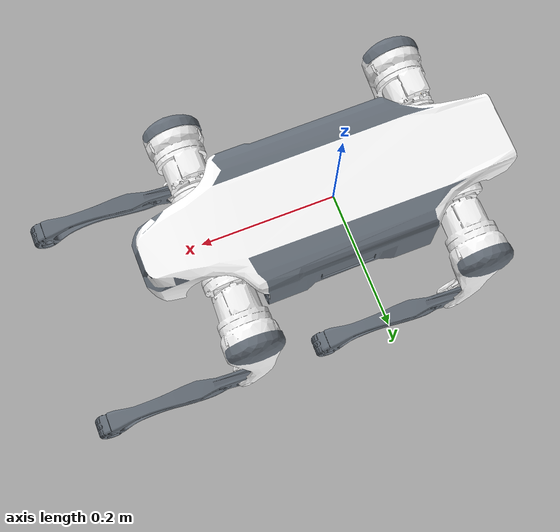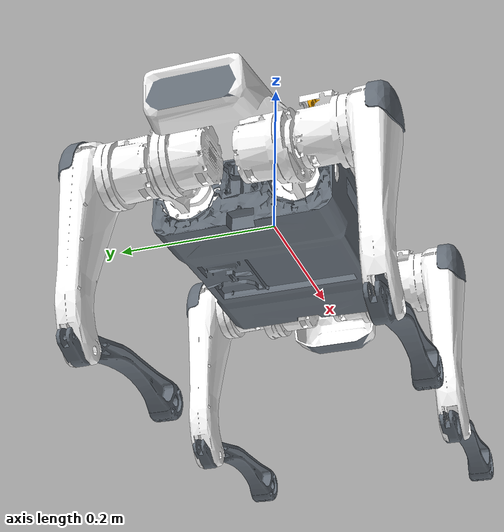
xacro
<?xml version="1.0"?>

<robot xmlns:xacro="http://www.ros.org/wiki/xacro">

    <xacro:include filename="$(find lite3_description)/xacro/imu_link.xacro"/>

    <link name="TORSO">
      <visual>
        <origin rpy="1.5708 0 1.5708" xyz="-0.05 -0.5 0.08"/>
        <geometry>
          <mesh filename="package://lite3_description/meshes/TORSO.dae" />
        </geometry>
      </visual>
      <collision>
        <geometry>
          <box size="0.234 0.184 0.08"/>
        </geometry>
      </collision>
    </link>

    <link name="INERTIA">
      <inertial>
        <origin xyz="0.004098 -0.000663 -0.002069" />
        <mass value="4.130" />
        <inertia ixx="0.016982120" ixy="2.1294E-05" ixz="6.0763E-05" iyy="0.030466501" iyz="1.7968E-05" izz="0.042609956" />
      </inertial>
    </link>

    <joint name="Torso2Inertia" type="fixed">
      <parent link="TORSO" />
      <child link="INERTIA" />
    </joint>

    <link name="FL_HIP">
      <inertial>
        <origin xyz="-0.0047 -0.0091 -0.0018" />
        <mass value="0.428" />
        <inertia ixx="0.00014538" ixy="8.1579E-07" ixz="-1.264E-05" iyy="0.00024024" iyz="1.3443E-06" izz="0.00013038" />
      </inertial>
      <visual>
        <origin rpy="1.5708 0 1.5708" xyz="-0.231 -0.5625 0.08"/>
        <geometry>
          <mesh filename="package://lite3_description/meshes/FL_HIP.dae" />
        </geometry>
      </visual>
    </link>

    <joint name="FL_HipX" type="revolute">
      <origin xyz="0.1745 0.062 0" />
      <parent link="TORSO" />
      <child link="FL_HIP" />
      <axis xyz="-1 0 0" />
      <limit lower="-0.523" upper="0.523" effort="40" velocity="30" />
       <dynamics damping="2" friction="6.5"/>
    </joint>

    <link name="FL_THIGH">
      <inertial>
        <origin xyz="-0.00523 -0.0216 -0.0273" />
        <mass value="0.61" />
        <inertia ixx="0.001" ixy="-2.5E-06" ixz="-1.12E-04" iyy="0.00116" iyz="3.75E-07" izz="2.68E-04" />
      </inertial>
      <visual>
        <origin rpy="-2.0 0 1.5708" xyz="0.265 -0.66 0.011"/>
        <geometry>
          <mesh filename="package://lite3_description/meshes/L_THIGH.dae" />
        </geometry>
      </visual>
      <collision>
        <origin xyz="0 0 -0.08"/>
        <geometry>
          <box size="0.02 0.02 0.16"/>
        </geometry>
      </collision>
    </link>

    <joint name="FL_HipY" type="revolute">
      <origin xyz="0 0.0985 0" />
      <parent link="FL_HIP" />
      <child link="FL_THIGH" />
      <axis xyz="0 -1 0" />
      <limit lower="-2.67" upper="0.314" effort="40" velocity="30" />
       <dynamics damping="2" friction="6.5"/>
    </joint>

    <link name="FL_SHANK">
      <inertial>
        <origin xyz="0.00585 -8.732E-07 -0.12" />
        <mass value="0.115" />
        <inertia ixx="6.68E-04" ixy="-1.24E-08" ixz="6.91E-06" iyy="6.86E-04" iyz="5.65E-09" izz="3.155E-05" />
      </inertial>
      <visual>
      <origin xyz="0 0 -0.03"/>
        <geometry>
          <mesh filename="package://lite3_description/meshes/SHANK.dae" />
        </geometry>
      </visual>
      <collision>
        <origin xyz="0 0 -0.09"/>
        <geometry>
          <box size="0.02 0.02 0.20"/>
        </geometry>
      </collision>
    </link>

    <joint name="FL_Knee" type="revolute">
      <origin xyz="0 0 -0.20" />
      <parent link="FL_THIGH" />
      <child link="FL_SHANK" />
      <axis xyz="0 -1 0" />
      <limit lower="0.524" upper="2.792" effort="65" velocity="20" />
       <dynamics damping="2" friction="6.5"/>
    </joint>

    <link name="FL_FOOT">
      <inertial>
        <mass value="1E-12" />
        <inertia ixx="1E-12" ixy="0" ixz="0" iyy="1E-12" iyz="0" izz="1E-12" />
      </inertial>
      <collision>
        <geometry>
          <sphere radius="0.013"/>
        </geometry>
      </collision>
    </link>

    <joint name="FL_Ankle" type="fixed">
      <origin xyz="0 0 -0.21"/>
      <parent link="FL_SHANK" />
      <child link="FL_FOOT" />
    </joint>

    <link name="FR_HIP">
      <inertial>
        <origin xyz="-0.0047 0.0091 -0.0018" />
        <mass value="0.428" />
        <inertia ixx="0.00014538" ixy="-8.1551E-07" ixz="-1.2639E-05" iyy="0.00024024" iyz="-1.3441E-06" izz="0.00013038" />
      </inertial>
      <visual>
        <origin rpy="1.5708 0 1.5708" xyz="-0.231 -0.446 0.0835"/>
        <geometry>
          <mesh filename="package://lite3_description/meshes/FR_HIP.dae" />
        </geometry>
      </visual>
    </link>

    <joint name="FR_HipX" type="revolute">
      <origin xyz="0.1745 -0.062 0" />
      <parent link="TORSO" />
      <child link="FR_HIP" />
      <axis xyz="-1 0 0" />
      <limit lower="-0.523" upper="0.523" effort="40" velocity="30" />
      <dynamics damping="2" friction="6.5"/>
    </joint>

    <link name="FR_THIGH">
      <inertial>
        <origin xyz="-0.00523 0.0216 -0.0273" />
        <mass value="0.61" />
        <inertia ixx="0.001" ixy="2.5E-06" ixz="-1.12E-04" iyy="0.00116" iyz="-3.75E-07" izz="2.68E-04" />
      </inertial>
      <visual>
        <origin rpy="-2.0 0 1.5708" xyz="0.265 -0.35 0.011"/>

        <geometry>
          <mesh filename="package://lite3_description/meshes/R_THIGH.dae" />
        </geometry>
      </visual>
      <collision>
        <origin xyz="0 0 -0.08"/>
        <geometry>
          <box size="0.02 0.02 0.16"/>
        </geometry>
      </collision>
    </link>

    <joint name="FR_HipY" type="revolute">
      <origin xyz="0 -0.0985 0" />
      <parent link="FR_HIP" />
      <child link="FR_THIGH" />
      <axis xyz="0 -1 0" />
      <limit lower="-2.67" upper="0.314" effort="40" velocity="30" />
       <dynamics damping="2" friction="6.5"/>
    </joint>

    <link name="FR_SHANK">
      <inertial>
        <origin xyz="0.00585 -8.732E-07 -0.12" />
        <mass value="0.115" />
        <inertia ixx="6.68E-04" ixy="-1.24E-08" ixz="6.91E-06" iyy="6.86E-04" iyz="5.65E-09" izz="3.155E-05" />
      </inertial>
      <visual>
      <origin xyz="0 0 -0.03"/>
        <geometry>
          <mesh filename="package://lite3_description/meshes/SHANK.dae" />
        </geometry>
      </visual>
      <collision>
        <origin xyz="0 0 -0.09"/>
        <geometry>
          <box size="0.02 0.02 0.20"/>
        </geometry>
      </collision>
    </link>

    <joint name="FR_Knee" type="revolute">
      <origin xyz="0 0 -0.20" />
      <parent link="FR_THIGH" />
      <child link="FR_SHANK" />
      <axis xyz="0 -1 0" />
      <limit lower="0.524" upper="2.792" effort="65" velocity="20" />
       <dynamics damping="2" friction="6.5"/>
    </joint>

    <link name="FR_FOOT">
      <inertial>
        <mass value="1E-12" />
        <inertia ixx="1E-12" ixy="0" ixz="0" iyy="1E-12" iyz="0" izz="1E-12" />
      </inertial>
      <collision>
        <geometry>
          <sphere radius="0.013"/>
        </geometry>
      </collision>
    </link>

    <joint name="FR_Ankle" type="fixed">
      <origin xyz="0 0 -0.21"/>
      <parent link="FR_SHANK" />
      <child link="FR_FOOT" />
    </joint>

    <link name="HL_HIP">
      <inertial>
        <origin xyz="0.0047 -0.0091 -0.0018" />
        <mass value="0.428" />
        <inertia ixx="0.00014538" ixy="-8.1585E-07" ixz="1.2639E-05" iyy="0.00024024" iyz="1.3444E-06" izz="0.00013038" />
      </inertial>
      <visual>
        <origin rpy="1.5708 0 1.5708" xyz="0.12 -0.5625 0.09"/>
        <geometry>
          <mesh filename="package://lite3_description/meshes/HL_HIP.dae" />
        </geometry>
      </visual>
    </link>

    <joint name="HL_HipX" type="revolute">
      <origin xyz="-0.1745 0.062 0" />
      <parent link="TORSO" />
      <child link="HL_HIP" />
      <axis xyz="-1 0 0" />
      <limit lower="-0.523" upper="0.523" effort="40" velocity="30" />
       <dynamics damping="2" friction="6.5"/>
    </joint>

    <link name="HL_THIGH">
      <inertial>
        <origin xyz="-0.00523 -0.0216 -0.0273" />
        <mass value="0.61" />
        <inertia ixx="0.001" ixy="-2.5E-06" ixz="-1.12E-04" iyy="0.00116" iyz="3.75E-07" izz="2.68E-04" />
      </inertial>
      <visual>
        <origin rpy="-2.0 0 1.5708" xyz="0.27 -0.66 0.011"/>
        <geometry>
          <mesh filename="package://lite3_description/meshes/L_THIGH.dae" />
        </geometry>
      </visual>
      <collision>
        <origin xyz="0 0 -0.08"/>
        <geometry>
          <box size="0.02 0.02 0.16"/>
        </geometry>
      </collision>
    </link>

    <joint name="HL_HipY" type="revolute">
      <origin xyz="0 0.0985 0" />
      <parent link="HL_HIP" />
      <child link="HL_THIGH" />
      <axis xyz="0 -1 0" />
      <limit lower="-2.67" upper="0.314" effort="40" velocity="30" />
       <dynamics damping="2" friction="6.5"/>
    </joint>

    <link name="HL_SHANK">
      <inertial>
        <origin xyz="0.00585 -8.732E-07 -0.12" />
        <mass value="0.115" />
        <inertia ixx="6.68E-04" ixy="-1.24E-08" ixz="6.91E-06" iyy="6.86E-04" iyz="5.65E-09" izz="3.155E-05" />
      </inertial>
      <visual>
      <origin xyz="0 0 -0.03"/>
        <geometry>
          <mesh filename="package://lite3_description/meshes/SHANK.dae" />
        </geometry>
      </visual>
      <collision>
        <origin xyz="0 0 -0.09"/>
        <geometry>
          <box size="0.02 0.02 0.20"/>
        </geometry>
      </collision>
    </link>

    <joint name="HL_Knee" type="revolute">
      <origin xyz="0 0 -0.20" />
      <parent link="HL_THIGH" />
      <child link="HL_SHANK" />
      <axis xyz="0 -1 0" />
      <limit lower="0.524" upper="2.792" effort="65" velocity="20" />
       <dynamics damping="2" friction="6.5"/>
    </joint>

    <link name="HL_FOOT">
      <inertial>
        <mass value="1E-12" />
        <inertia ixx="1E-12" ixy="0" ixz="0" iyy="1E-12" iyz="0" izz="1E-12" />
      </inertial>
      <collision>
        <geometry>
          <sphere radius="0.013"/>
        </geometry>
      </collision>
    </link>

    <joint name="HL_Ankle" type="fixed">
      <origin xyz="0 0 -0.21"/>
      <parent link="HL_SHANK" />
      <child link="HL_FOOT" />
    </joint>

    <link name="HR_HIP">
      <inertial>
        <origin xyz="0.0047 0.0091 -0.0018" />
        <mass value="0.428" />
        <inertia ixx="0.00014538" ixy="8.1545E-07" ixz="1.2639E-05" iyy="0.00024024" iyz="-1.344E-06" izz="0.00013038" />
      </inertial>
      <visual>
        <origin rpy="1.5708 0 1.5708" xyz="0.13 -0.445 0.09"/>
        <geometry>
          <mesh filename="package://lite3_description/meshes/HR_HIP.dae" />
        </geometry>
      </visual>
    </link>

    <joint name="HR_HipX" type="revolute">
      <origin xyz="-0.1745 -0.062 0" />
      <parent link="TORSO" />
      <child link="HR_HIP" />
      <axis xyz="-1 0 0" />
      <limit lower="-0.523" upper="0.523" effort="40" velocity="30" />
       <dynamics damping="2" friction="6.5"/>
    </joint>

    <link name="HR_THIGH">
      <inertial>
        <origin xyz="-0.00523 0.0216 -0.0273" />
        <mass value="0.61" />
        <inertia ixx="0.001" ixy="2.5E-06" ixz="-1.12E-04" iyy="0.00116" iyz="-3.75E-07" izz="2.68E-04" />
      </inertial>
      <visual>
        <origin rpy="-2.0 0 1.5708" xyz="0.27 -0.35 0.013"/>
        <geometry>
          <mesh filename="package://lite3_description/meshes/R_THIGH.dae" />
        </geometry>
      </visual>
      <collision>
        <origin xyz="0 0 -0.08"/>
        <geometry>
          <box size="0.02 0.02 0.16"/>
        </geometry>
      </collision>
    </link>

    <joint name="HR_HipY" type="revolute">
      <origin xyz="0 -0.0985 0" />
      <parent link="HR_HIP" />
      <child link="HR_THIGH" />
      <axis xyz="0 -1 0" />
      <limit lower="-2.67" upper="0.314" effort="40" velocity="30" />
       <dynamics damping="2" friction="6.5"/>
    </joint>

    <link name="HR_SHANK">
      <inertial>
        <origin xyz="0.00585 -8.732E-07 -0.12" />
        <mass value="0.115" />
        <inertia ixx="6.68E-04" ixy="-1.24E-08" ixz="6.91E-06" iyy="6.86E-04" iyz="5.65E-09" izz="3.155E-05" />
      </inertial>
      <visual>
        <origin xyz="0 0 -0.03"/>
        <geometry>
          <mesh filename="package://lite3_description/meshes/SHANK.dae" />
        </geometry>
      </visual>
      <collision>
        <origin xyz="0 0 -0.09"/>
        <geometry>
          <box size="0.02 0.02 0.20"/>
        </geometry>
      </collision>
    </link>

    <joint name="HR_Knee" type="revolute">
      <origin xyz="0 0 -0.20" />
      <parent link="HR_THIGH" />
      <child link="HR_SHANK" />
      <axis xyz="0 -1 0" />
      <limit lower="0.524" upper="2.792" effort="65" velocity="20" />
       <dynamics damping="2" friction="6.5"/>
    </joint>

    <link name="HR_FOOT">
      <inertial>
        <mass value="1E-12" />
        <inertia ixx="1E-12" ixy="0" ixz="0" iyy="1E-12" iyz="0" izz="1E-12" />
      </inertial>
      <collision>
        <geometry>
          <sphere radius="0.013"/>
        </geometry>
      </collision>
    </link>

    <joint name="HR_Ankle" type="fixed">
      <origin xyz="0 0 -0.21"/>
      <parent link="HR_SHANK" />
      <child link="HR_FOOT" />
    </joint>

</robot>

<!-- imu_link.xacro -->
<robot xmlns:xacro="http://www.ros.org/wiki/xacro">

    <joint name="imu_joint" type="fixed">
        <parent link="TORSO"/>
        <child link="imu_link"/>
        <origin rpy="0 0 0" xyz="0 0 0"/>
    </joint>

    <link name="imu_link">
        <inertial>
            <mass value="0.001"/>
            <origin rpy="0 0 0" xyz="0 0 0"/>
            <inertia ixx="0.0001" ixy="0" ixz="0" iyy="0.0001" iyz="0" izz="0.0001"/>
        </inertial>
        <visual>
            <origin rpy="0 0 0" xyz="0 0 0"/>
            <geometry>
              <box size="0.001 0.001 0.001"/>
            </geometry>
        </visual>
        <collision>
            <origin rpy="0 0 0" xyz="0 0 0"/>
            <geometry>
              <box size=".001 .001 .001"/>
            </geometry>
        </collision>
    </link>

</robot>
